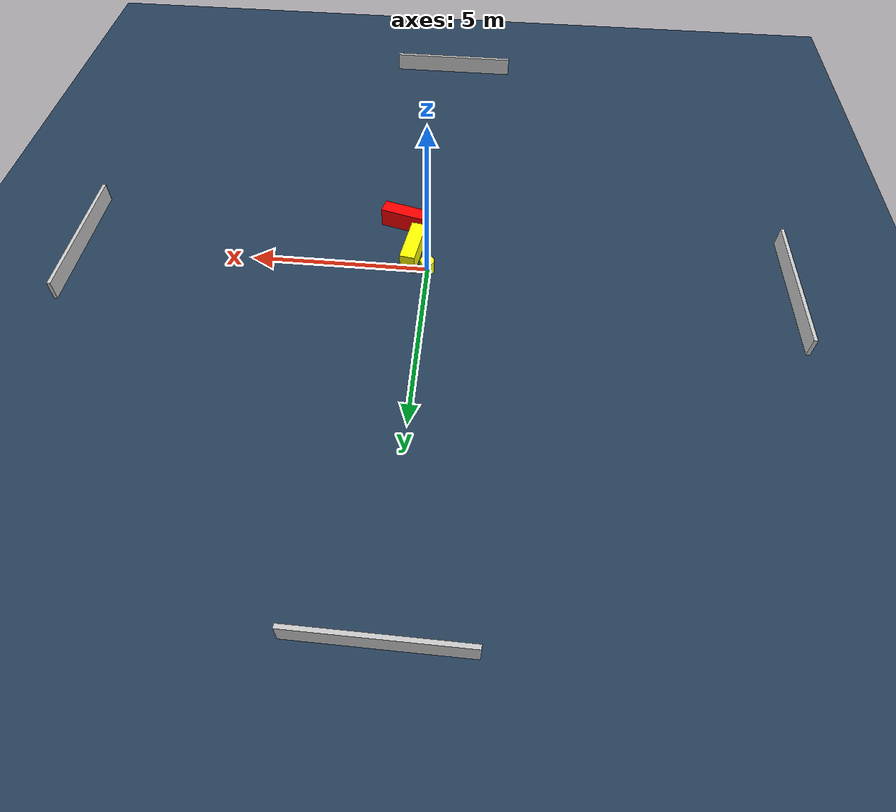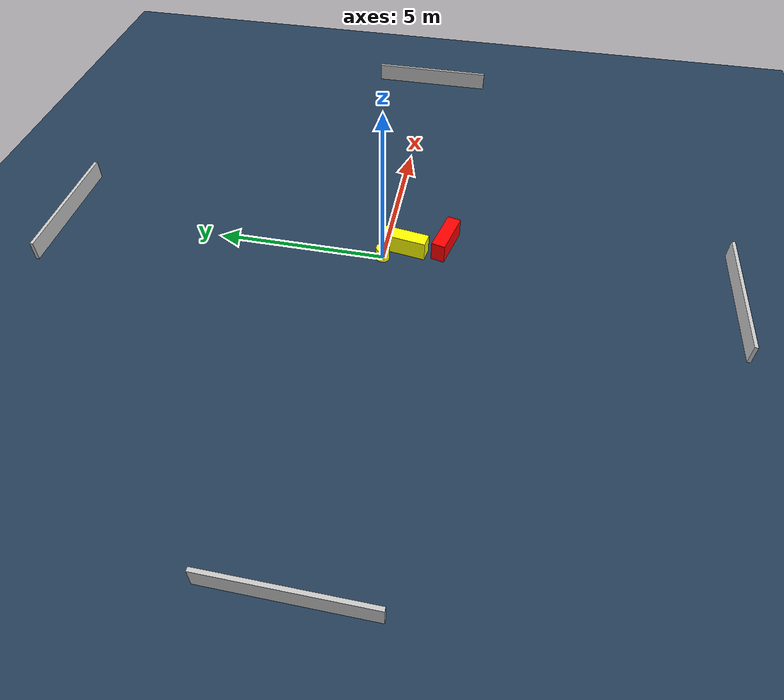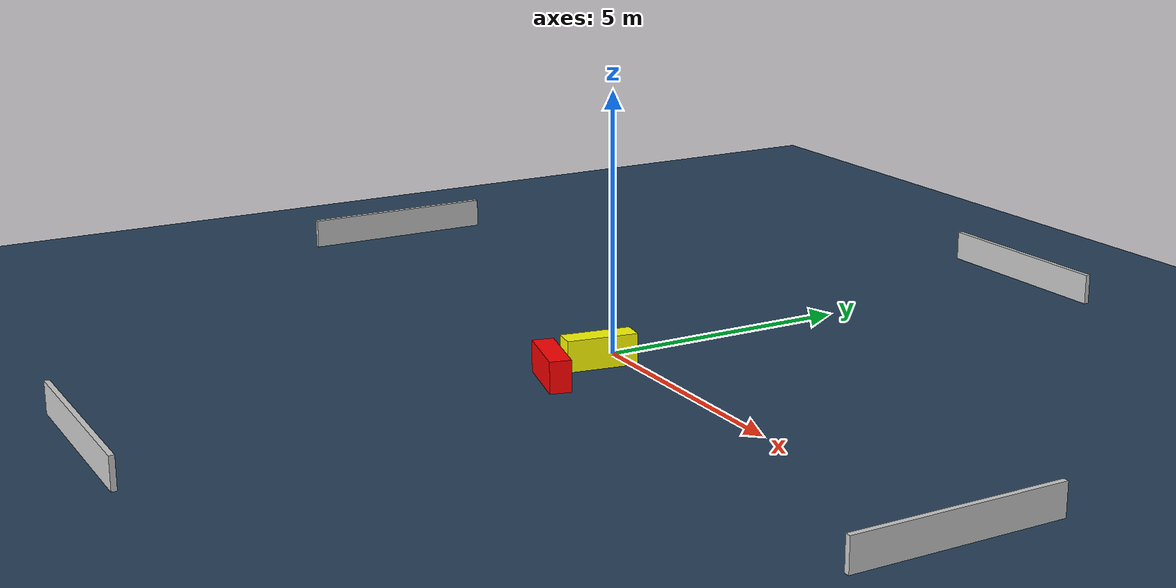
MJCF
<?xml version="1.0" ?>
<mujoco model="generated_environment">
  <option timestep="0.01" integrator="RK4" cone="elliptic"/>
  <default>
    <geom density="1"/>
  </default>
  <asset>
    <texture builtin="gradient" height="3072" name="skybox" rgb1="0.3 0.5 0.7" rgb2="0 0 0" type="skybox" width="512"/>
    <texture builtin="checker" height="300" name="groundplane" rgb1="0.2 0.3 0.4" rgb2="0.1 0.2 0.3" type="2d" width="300"/>
    <material name="groundplane" reflectance="0.2" texrepeat="5 5" texture="groundplane"/>
  </asset>
  <worldbody>
    <light dir="0 0 -1" directional="true" pos="0 0 1.5"/>
    <geom condim="3" friction="0.5 0.005 0.001" material="groundplane" name="floor" pos="0 0 0" size="0 0 0.05" type="plane"/>
    <body name="walls">
      <geom name="wall_1" condim="4" pos="-10.0 0.0 0.3" rgba="0.800000011920929 0.800000011920929 0.800000011920929 1.0" size="0.05 2.0 0.3" type="box"/>
      <geom name="wall_2" condim="4" pos="10.0 0.0 0.3" rgba="0.800000011920929 0.800000011920929 0.800000011920929 1.0" size="0.05 2.0 0.3" type="box"/>
      <geom name="wall_3" condim="4" pos="0.0 -10.0 0.3" rgba="0.800000011920929 0.800000011920929 0.800000011920929 1.0" size="2.0 0.05 0.3" type="box"/>
      <geom name="wall_4" condim="4" pos="0.0 10.0 0.3" rgba="0.800000011920929 0.800000011920929 0.800000011920929 1.0" size="2.0 0.05 0.3" type="box"/>
    </body>
    <body name="robot">
      <joint name="joint_x" type="slide" pos="0 0 0" axis="1 0 0"/>
      <joint name="joint_y" type="slide" pos="0 0 0" axis="0 1 0"/>
      <geom name="robot" type="cylinder" pos="0.0 0.0 0.2" size="0.2 0.2 0.0" mass="5.0" friction="1.0 0.005 0.0001" condim="4" rgba="1.0 1.0 0.0 1.0"/>
    </body>
    <body name="obstacle_1_movable">
      <geom name="obstacle_1_movable" condim="4" pos="0.4514395271613812 -0.5635771254068219 0.3" euler="0 0 81.29483004599713" friction="0.0 0.005 0.001" rgba="1.0 1.0 0.0 1.0" size="0.6848808958899493 0.21444105801307398 0.3" type="box" mass="0.1"/>
      <joint type="free"/>
    </body>
    <body name="obstacle_2_static">
      <geom name="obstacle_2_static" condim="4" pos="0.8275993185528481 -1.7498865307527036 0.3" euler="0 0 76.13003516867248" friction="0.0 0.005 0.001" rgba="1.0 0.0 0.0 1.0" size="0.20384149160948017 0.655090483322567 0.3" type="box"/>
    </body>
  </worldbody>
  <actuator>
    <motor name="actuator_x" joint="joint_x" gear="1" ctrlrange="-1 1"/>
    <motor name="actuator_y" joint="joint_y" gear="1" ctrlrange="-1 1"/>
  </actuator>
</mujoco>
